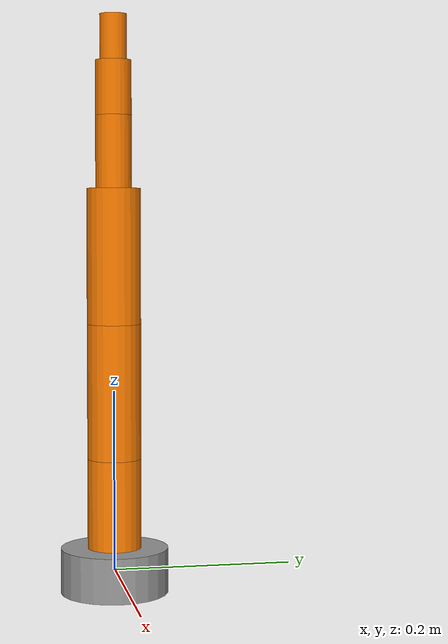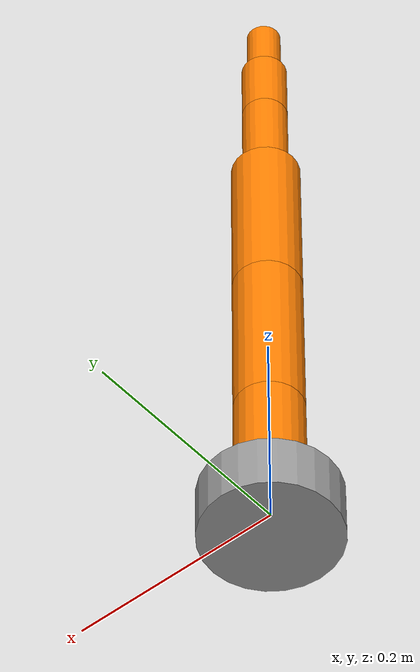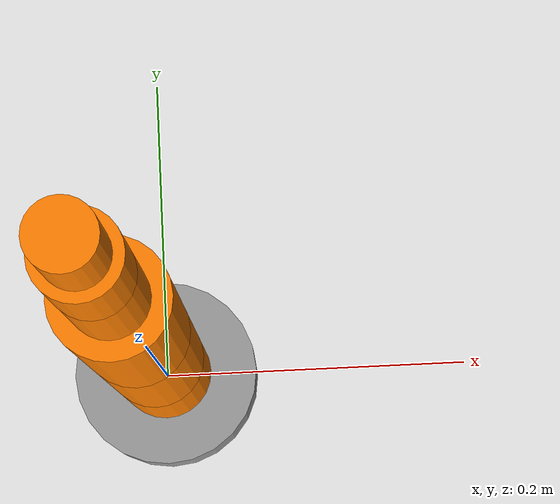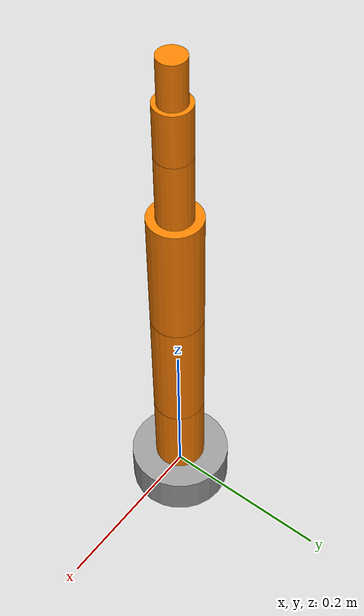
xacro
<?xml version="1.0"?>
<robot name="six_dof_arm" xmlns:xacro="http://www.ros.org/wiki/xacro">

  <xacro:property name="base_height" value="0.05"/>
  <xacro:property name="link_radius" value="0.03"/>
  <xacro:property name="link1_len" value="0.10"/>
  <xacro:property name="link2_len" value="0.15"/>
  <xacro:property name="link3_len" value="0.15"/>
  <xacro:property name="link4_len" value="0.08"/>
  <xacro:property name="link5_len" value="0.06"/>
  <xacro:property name="link6_len" value="0.05"/>

  <material name="orange"><color rgba="1.0 0.5 0.0 1.0"/></material>
  <material name="grey"><color rgba="0.6 0.6 0.6 1.0"/></material>

  <link name="base_link">
    <visual>
      <geometry><cylinder radius="0.06" length="${base_height}"/></geometry>
      <material name="grey"/>
    </visual>
    <collision>
      <geometry><cylinder radius="0.06" length="${base_height}"/></geometry>
    </collision>
    <inertial>
      <mass value="0.5"/>
      <inertia ixx="0.001" ixy="0" ixz="0" iyy="0.001" iyz="0" izz="0.001"/>
    </inertial>
  </link>

  <xacro:macro name="arm_link" params="name length radius:=${link_radius}">
    <link name="${name}">
      <visual>
        <origin xyz="0 0 ${length/2}" rpy="0 0 0"/>
        <geometry><cylinder radius="${radius}" length="${length}"/></geometry>
        <material name="orange"/>
      </visual>
      <collision>
        <origin xyz="0 0 ${length/2}" rpy="0 0 0"/>
        <geometry><cylinder radius="${radius}" length="${length}"/></geometry>
      </collision>
      <inertial>
        <origin xyz="0 0 ${length/2}"/>
        <mass value="0.2"/>
        <inertia ixx="0.0005" ixy="0" ixz="0" iyy="0.0005" iyz="0" izz="0.0002"/>
      </inertial>
    </link>
  </xacro:macro>

  <xacro:arm_link name="link1" length="${link1_len}"/>
  <xacro:arm_link name="link2" length="${link2_len}"/>
  <xacro:arm_link name="link3" length="${link3_len}"/>
  <xacro:arm_link name="link4" length="${link4_len}" radius="0.02"/>
  <xacro:arm_link name="link5" length="${link5_len}" radius="0.02"/>
  <xacro:arm_link name="link6" length="${link6_len}" radius="0.015"/>

  <joint name="joint1" type="revolute">
    <parent link="base_link"/>
    <child link="link1"/>
    <origin xyz="0 0 ${base_height/2}" rpy="0 0 0"/>
    <axis xyz="0 0 1"/>
    <limit lower="-3.14" upper="3.14" effort="10" velocity="1.5"/>
  </joint>

  <joint name="joint2" type="revolute">
    <parent link="link1"/>
    <child link="link2"/>
    <origin xyz="0 0 ${link1_len}" rpy="0 0 0"/>
    <axis xyz="0 1 0"/>
    <limit lower="-1.57" upper="1.57" effort="10" velocity="1.5"/>
  </joint>

  <joint name="joint3" type="revolute">
    <parent link="link2"/>
    <child link="link3"/>
    <origin xyz="0 0 ${link2_len}" rpy="0 0 0"/>
    <axis xyz="0 1 0"/>
    <limit lower="-1.57" upper="1.57" effort="10" velocity="1.5"/>
  </joint>

  <joint name="joint4" type="revolute">
    <parent link="link3"/>
    <child link="link4"/>
    <origin xyz="0 0 ${link3_len}" rpy="0 0 0"/>
    <axis xyz="0 0 1"/>
    <limit lower="-3.14" upper="3.14" effort="5" velocity="2.0"/>
  </joint>

  <joint name="joint5" type="revolute">
    <parent link="link4"/>
    <child link="link5"/>
    <origin xyz="0 0 ${link4_len}" rpy="0 0 0"/>
    <axis xyz="0 1 0"/>
    <limit lower="-1.57" upper="1.57" effort="5" velocity="2.0"/>
  </joint>

  <joint name="joint6" type="revolute">
    <parent link="link5"/>
    <child link="link6"/>
    <origin xyz="0 0 ${link5_len}" rpy="0 0 0"/>
    <axis xyz="0 0 1"/>
    <limit lower="-3.14" upper="3.14" effort="5" velocity="2.0"/>
  </joint>

  <ros2_control name="ArmSystem" type="system">
    <hardware>
      <plugin>gz_ros2_control/GazeboSimSystem</plugin>
    </hardware>
    <xacro:macro name="joint_interface" params="joint_name">
      <joint name="${joint_name}">
        <command_interface name="position"/>
        <state_interface name="position"/>
        <state_interface name="velocity"/>
      </joint>
    </xacro:macro>
    <xacro:joint_interface joint_name="joint1"/>
    <xacro:joint_interface joint_name="joint2"/>
    <xacro:joint_interface joint_name="joint3"/>
    <xacro:joint_interface joint_name="joint4"/>
    <xacro:joint_interface joint_name="joint5"/>
    <xacro:joint_interface joint_name="joint6"/>
  </ros2_control>

  <gazebo>
    <plugin filename="gz_ros2_control-system" name="gz_ros2_control::GazeboSimROS2ControlPlugin">
      <parameters>$(find arm_bringup)/config/arm_controllers.yaml</parameters>
    </plugin>
  </gazebo>

</robot>
